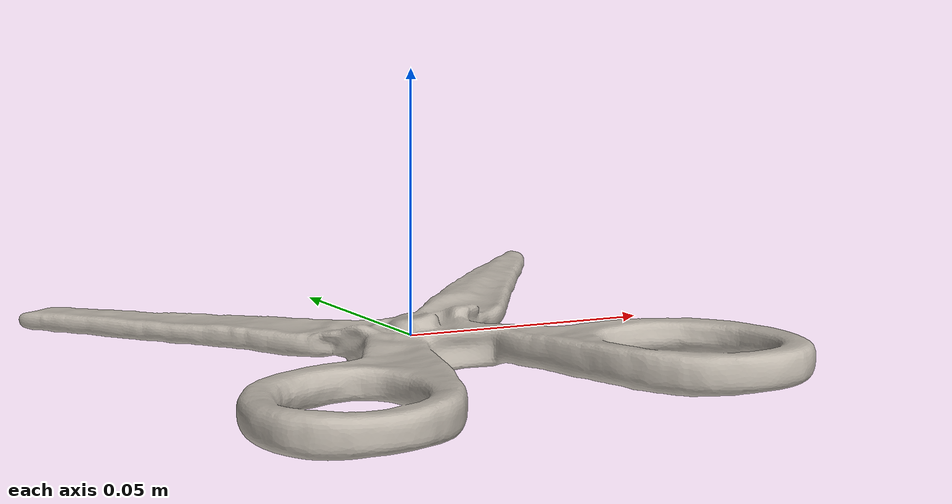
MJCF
<?xml version='1.0' encoding='utf-8'?>
<mujoco model="scissors_3">
  <asset>
    <texture file="ceramic.png" name="tex-scissors_3" type="2d" />
    <material name="scissors_3" reflectance="0.5" texrepeat="1 1" texture="tex-scissors_3" texuniform="false" />
    <mesh file="visual/model_normalized_0.obj" name="model_normalized_0_vis" scale="0.13000000000000003 0.13000000000000003 0.13000000000000003" refquat="0.4999999999999997 -0.4999999999999997 0.4999999999999997 -0.4999999999999997" />
    <mesh file="collision/model_normalized_collision_13.obj" name="model_normalized_collision_13._coll" scale="0.13000000000000003 0.13000000000000003 0.13000000000000003" refquat="0.4999999999999997 -0.4999999999999997 0.4999999999999997 -0.4999999999999997" />
    <mesh file="collision/model_normalized_collision_15.obj" name="model_normalized_collision_15._coll" scale="0.13000000000000003 0.13000000000000003 0.13000000000000003" refquat="0.4999999999999997 -0.4999999999999997 0.4999999999999997 -0.4999999999999997" />
    <mesh file="collision/model_normalized_collision_10.obj" name="model_normalized_collision_10._coll" scale="0.13000000000000003 0.13000000000000003 0.13000000000000003" refquat="0.4999999999999997 -0.4999999999999997 0.4999999999999997 -0.4999999999999997" />
    <mesh file="collision/model_normalized_collision_26.obj" name="model_normalized_collision_26._coll" scale="0.13000000000000003 0.13000000000000003 0.13000000000000003" refquat="0.4999999999999997 -0.4999999999999997 0.4999999999999997 -0.4999999999999997" />
    <mesh file="collision/model_normalized_collision_25.obj" name="model_normalized_collision_25._coll" scale="0.13000000000000003 0.13000000000000003 0.13000000000000003" refquat="0.4999999999999997 -0.4999999999999997 0.4999999999999997 -0.4999999999999997" />
    <mesh file="collision/model_normalized_collision_5.obj" name="model_normalized_collision_5._coll" scale="0.13000000000000003 0.13000000000000003 0.13000000000000003" refquat="0.4999999999999997 -0.4999999999999997 0.4999999999999997 -0.4999999999999997" />
    <mesh file="collision/model_normalized_collision_31.obj" name="model_normalized_collision_31._coll" scale="0.13000000000000003 0.13000000000000003 0.13000000000000003" refquat="0.4999999999999997 -0.4999999999999997 0.4999999999999997 -0.4999999999999997" />
    <mesh file="collision/model_normalized_collision_3.obj" name="model_normalized_collision_3._coll" scale="0.13000000000000003 0.13000000000000003 0.13000000000000003" refquat="0.4999999999999997 -0.4999999999999997 0.4999999999999997 -0.4999999999999997" />
    <mesh file="collision/model_normalized_collision_14.obj" name="model_normalized_collision_14._coll" scale="0.13000000000000003 0.13000000000000003 0.13000000000000003" refquat="0.4999999999999997 -0.4999999999999997 0.4999999999999997 -0.4999999999999997" />
    <mesh file="collision/model_normalized_collision_28.obj" name="model_normalized_collision_28._coll" scale="0.13000000000000003 0.13000000000000003 0.13000000000000003" refquat="0.4999999999999997 -0.4999999999999997 0.4999999999999997 -0.4999999999999997" />
    <mesh file="collision/model_normalized_collision_11.obj" name="model_normalized_collision_11._coll" scale="0.13000000000000003 0.13000000000000003 0.13000000000000003" refquat="0.4999999999999997 -0.4999999999999997 0.4999999999999997 -0.4999999999999997" />
    <mesh file="collision/model_normalized_collision_29.obj" name="model_normalized_collision_29._coll" scale="0.13000000000000003 0.13000000000000003 0.13000000000000003" refquat="0.4999999999999997 -0.4999999999999997 0.4999999999999997 -0.4999999999999997" />
    <mesh file="collision/model_normalized_collision_24.obj" name="model_normalized_collision_24._coll" scale="0.13000000000000003 0.13000000000000003 0.13000000000000003" refquat="0.4999999999999997 -0.4999999999999997 0.4999999999999997 -0.4999999999999997" />
    <mesh file="collision/model_normalized_collision_1.obj" name="model_normalized_collision_1._coll" scale="0.13000000000000003 0.13000000000000003 0.13000000000000003" refquat="0.4999999999999997 -0.4999999999999997 0.4999999999999997 -0.4999999999999997" />
    <mesh file="collision/model_normalized_collision_0.obj" name="model_normalized_collision_0._coll" scale="0.13000000000000003 0.13000000000000003 0.13000000000000003" refquat="0.4999999999999997 -0.4999999999999997 0.4999999999999997 -0.4999999999999997" />
    <mesh file="collision/model_normalized_collision_27.obj" name="model_normalized_collision_27._coll" scale="0.13000000000000003 0.13000000000000003 0.13000000000000003" refquat="0.4999999999999997 -0.4999999999999997 0.4999999999999997 -0.4999999999999997" />
    <mesh file="collision/model_normalized_collision_9.obj" name="model_normalized_collision_9._coll" scale="0.13000000000000003 0.13000000000000003 0.13000000000000003" refquat="0.4999999999999997 -0.4999999999999997 0.4999999999999997 -0.4999999999999997" />
    <mesh file="collision/model_normalized_collision_19.obj" name="model_normalized_collision_19._coll" scale="0.13000000000000003 0.13000000000000003 0.13000000000000003" refquat="0.4999999999999997 -0.4999999999999997 0.4999999999999997 -0.4999999999999997" />
    <mesh file="collision/model_normalized_collision_21.obj" name="model_normalized_collision_21._coll" scale="0.13000000000000003 0.13000000000000003 0.13000000000000003" refquat="0.4999999999999997 -0.4999999999999997 0.4999999999999997 -0.4999999999999997" />
    <mesh file="collision/model_normalized_collision_30.obj" name="model_normalized_collision_30._coll" scale="0.13000000000000003 0.13000000000000003 0.13000000000000003" refquat="0.4999999999999997 -0.4999999999999997 0.4999999999999997 -0.4999999999999997" />
    <mesh file="collision/model_normalized_collision_20.obj" name="model_normalized_collision_20._coll" scale="0.13000000000000003 0.13000000000000003 0.13000000000000003" refquat="0.4999999999999997 -0.4999999999999997 0.4999999999999997 -0.4999999999999997" />
    <mesh file="collision/model_normalized_collision_2.obj" name="model_normalized_collision_2._coll" scale="0.13000000000000003 0.13000000000000003 0.13000000000000003" refquat="0.4999999999999997 -0.4999999999999997 0.4999999999999997 -0.4999999999999997" />
    <mesh file="collision/model_normalized_collision_7.obj" name="model_normalized_collision_7._coll" scale="0.13000000000000003 0.13000000000000003 0.13000000000000003" refquat="0.4999999999999997 -0.4999999999999997 0.4999999999999997 -0.4999999999999997" />
    <mesh file="collision/model_normalized_collision_22.obj" name="model_normalized_collision_22._coll" scale="0.13000000000000003 0.13000000000000003 0.13000000000000003" refquat="0.4999999999999997 -0.4999999999999997 0.4999999999999997 -0.4999999999999997" />
    <mesh file="collision/model_normalized_collision_16.obj" name="model_normalized_collision_16._coll" scale="0.13000000000000003 0.13000000000000003 0.13000000000000003" refquat="0.4999999999999997 -0.4999999999999997 0.4999999999999997 -0.4999999999999997" />
    <mesh file="collision/model_normalized_collision_8.obj" name="model_normalized_collision_8._coll" scale="0.13000000000000003 0.13000000000000003 0.13000000000000003" refquat="0.4999999999999997 -0.4999999999999997 0.4999999999999997 -0.4999999999999997" />
    <mesh file="collision/model_normalized_collision_6.obj" name="model_normalized_collision_6._coll" scale="0.13000000000000003 0.13000000000000003 0.13000000000000003" refquat="0.4999999999999997 -0.4999999999999997 0.4999999999999997 -0.4999999999999997" />
    <mesh file="collision/model_normalized_collision_18.obj" name="model_normalized_collision_18._coll" scale="0.13000000000000003 0.13000000000000003 0.13000000000000003" refquat="0.4999999999999997 -0.4999999999999997 0.4999999999999997 -0.4999999999999997" />
    <mesh file="collision/model_normalized_collision_17.obj" name="model_normalized_collision_17._coll" scale="0.13000000000000003 0.13000000000000003 0.13000000000000003" refquat="0.4999999999999997 -0.4999999999999997 0.4999999999999997 -0.4999999999999997" />
    <mesh file="collision/model_normalized_collision_12.obj" name="model_normalized_collision_12._coll" scale="0.13000000000000003 0.13000000000000003 0.13000000000000003" refquat="0.4999999999999997 -0.4999999999999997 0.4999999999999997 -0.4999999999999997" />
    <mesh file="collision/model_normalized_collision_4.obj" name="model_normalized_collision_4._coll" scale="0.13000000000000003 0.13000000000000003 0.13000000000000003" refquat="0.4999999999999997 -0.4999999999999997 0.4999999999999997 -0.4999999999999997" />
    <mesh file="collision/model_normalized_collision_23.obj" name="model_normalized_collision_23._coll" scale="0.13000000000000003 0.13000000000000003 0.13000000000000003" refquat="0.4999999999999997 -0.4999999999999997 0.4999999999999997 -0.4999999999999997" />
    <texture type="2d" name="9348d42b0a06_scissors__3d_asset__texture_kd" file="visual/9348d42b0a06_scissors__3d_asset__texture_kd.png" />
    <material name="Material_0" texture="9348d42b0a06_scissors__3d_asset__texture_kd" specular="0.5" shininess="0.5" />
  </asset>
  <default>
    <default class="region">
      <geom group="1" conaffinity="0" contype="0" rgba="0 1 0 0" />
    </default>
  </default>
  <worldbody>
    <body>
      <body name="object">
        <geom solimp="0.998 0.998 0.001" solref="0.001 1" density="100" friction="0.95 0.3 0.1" type="mesh" mesh="model_normalized_0_vis" conaffinity="0" contype="0" group="1" material="Material_0" />
        <geom solimp="0.998 0.998 0.001" solref="0.001 1" density="100" friction="0.95 0.3 0.1" type="mesh" mesh="model_normalized_collision_13._coll" group="0" rgba="0.8 0.8 0.8 0.0" />
        <geom solimp="0.998 0.998 0.001" solref="0.001 1" density="100" friction="0.95 0.3 0.1" type="mesh" mesh="model_normalized_collision_15._coll" group="0" rgba="0.8 0.8 0.8 0.0" />
        <geom solimp="0.998 0.998 0.001" solref="0.001 1" density="100" friction="0.95 0.3 0.1" type="mesh" mesh="model_normalized_collision_10._coll" group="0" rgba="0.8 0.8 0.8 0.0" />
        <geom solimp="0.998 0.998 0.001" solref="0.001 1" density="100" friction="0.95 0.3 0.1" type="mesh" mesh="model_normalized_collision_26._coll" group="0" rgba="0.8 0.8 0.8 0.0" />
        <geom solimp="0.998 0.998 0.001" solref="0.001 1" density="100" friction="0.95 0.3 0.1" type="mesh" mesh="model_normalized_collision_25._coll" group="0" rgba="0.8 0.8 0.8 0.0" />
        <geom solimp="0.998 0.998 0.001" solref="0.001 1" density="100" friction="0.95 0.3 0.1" type="mesh" mesh="model_normalized_collision_5._coll" group="0" rgba="0.8 0.8 0.8 0.0" />
        <geom solimp="0.998 0.998 0.001" solref="0.001 1" density="100" friction="0.95 0.3 0.1" type="mesh" mesh="model_normalized_collision_31._coll" group="0" rgba="0.8 0.8 0.8 0.0" />
        <geom solimp="0.998 0.998 0.001" solref="0.001 1" density="100" friction="0.95 0.3 0.1" type="mesh" mesh="model_normalized_collision_3._coll" group="0" rgba="0.8 0.8 0.8 0.0" />
        <geom solimp="0.998 0.998 0.001" solref="0.001 1" density="100" friction="0.95 0.3 0.1" type="mesh" mesh="model_normalized_collision_14._coll" group="0" rgba="0.8 0.8 0.8 0.0" />
        <geom solimp="0.998 0.998 0.001" solref="0.001 1" density="100" friction="0.95 0.3 0.1" type="mesh" mesh="model_normalized_collision_28._coll" group="0" rgba="0.8 0.8 0.8 0.0" />
        <geom solimp="0.998 0.998 0.001" solref="0.001 1" density="100" friction="0.95 0.3 0.1" type="mesh" mesh="model_normalized_collision_11._coll" group="0" rgba="0.8 0.8 0.8 0.0" />
        <geom solimp="0.998 0.998 0.001" solref="0.001 1" density="100" friction="0.95 0.3 0.1" type="mesh" mesh="model_normalized_collision_29._coll" group="0" rgba="0.8 0.8 0.8 0.0" />
        <geom solimp="0.998 0.998 0.001" solref="0.001 1" density="100" friction="0.95 0.3 0.1" type="mesh" mesh="model_normalized_collision_24._coll" group="0" rgba="0.8 0.8 0.8 0.0" />
        <geom solimp="0.998 0.998 0.001" solref="0.001 1" density="100" friction="0.95 0.3 0.1" type="mesh" mesh="model_normalized_collision_1._coll" group="0" rgba="0.8 0.8 0.8 0.0" />
        <geom solimp="0.998 0.998 0.001" solref="0.001 1" density="100" friction="0.95 0.3 0.1" type="mesh" mesh="model_normalized_collision_0._coll" group="0" rgba="0.8 0.8 0.8 0.0" />
        <geom solimp="0.998 0.998 0.001" solref="0.001 1" density="100" friction="0.95 0.3 0.1" type="mesh" mesh="model_normalized_collision_27._coll" group="0" rgba="0.8 0.8 0.8 0.0" />
        <geom solimp="0.998 0.998 0.001" solref="0.001 1" density="100" friction="0.95 0.3 0.1" type="mesh" mesh="model_normalized_collision_9._coll" group="0" rgba="0.8 0.8 0.8 0.0" />
        <geom solimp="0.998 0.998 0.001" solref="0.001 1" density="100" friction="0.95 0.3 0.1" type="mesh" mesh="model_normalized_collision_19._coll" group="0" rgba="0.8 0.8 0.8 0.0" />
        <geom solimp="0.998 0.998 0.001" solref="0.001 1" density="100" friction="0.95 0.3 0.1" type="mesh" mesh="model_normalized_collision_21._coll" group="0" rgba="0.8 0.8 0.8 0.0" />
        <geom solimp="0.998 0.998 0.001" solref="0.001 1" density="100" friction="0.95 0.3 0.1" type="mesh" mesh="model_normalized_collision_30._coll" group="0" rgba="0.8 0.8 0.8 0.0" />
        <geom solimp="0.998 0.998 0.001" solref="0.001 1" density="100" friction="0.95 0.3 0.1" type="mesh" mesh="model_normalized_collision_20._coll" group="0" rgba="0.8 0.8 0.8 0.0" />
        <geom solimp="0.998 0.998 0.001" solref="0.001 1" density="100" friction="0.95 0.3 0.1" type="mesh" mesh="model_normalized_collision_2._coll" group="0" rgba="0.8 0.8 0.8 0.0" />
        <geom solimp="0.998 0.998 0.001" solref="0.001 1" density="100" friction="0.95 0.3 0.1" type="mesh" mesh="model_normalized_collision_7._coll" group="0" rgba="0.8 0.8 0.8 0.0" />
        <geom solimp="0.998 0.998 0.001" solref="0.001 1" density="100" friction="0.95 0.3 0.1" type="mesh" mesh="model_normalized_collision_22._coll" group="0" rgba="0.8 0.8 0.8 0.0" />
        <geom solimp="0.998 0.998 0.001" solref="0.001 1" density="100" friction="0.95 0.3 0.1" type="mesh" mesh="model_normalized_collision_16._coll" group="0" rgba="0.8 0.8 0.8 0.0" />
        <geom solimp="0.998 0.998 0.001" solref="0.001 1" density="100" friction="0.95 0.3 0.1" type="mesh" mesh="model_normalized_collision_8._coll" group="0" rgba="0.8 0.8 0.8 0.0" />
        <geom solimp="0.998 0.998 0.001" solref="0.001 1" density="100" friction="0.95 0.3 0.1" type="mesh" mesh="model_normalized_collision_6._coll" group="0" rgba="0.8 0.8 0.8 0.0" />
        <geom solimp="0.998 0.998 0.001" solref="0.001 1" density="100" friction="0.95 0.3 0.1" type="mesh" mesh="model_normalized_collision_18._coll" group="0" rgba="0.8 0.8 0.8 0.0" />
        <geom solimp="0.998 0.998 0.001" solref="0.001 1" density="100" friction="0.95 0.3 0.1" type="mesh" mesh="model_normalized_collision_17._coll" group="0" rgba="0.8 0.8 0.8 0.0" />
        <geom solimp="0.998 0.998 0.001" solref="0.001 1" density="100" friction="0.95 0.3 0.1" type="mesh" mesh="model_normalized_collision_12._coll" group="0" rgba="0.8 0.8 0.8 0.0" />
        <geom solimp="0.998 0.998 0.001" solref="0.001 1" density="100" friction="0.95 0.3 0.1" type="mesh" mesh="model_normalized_collision_4._coll" group="0" rgba="0.8 0.8 0.8 0.0" />
        <geom solimp="0.998 0.998 0.001" solref="0.001 1" density="100" friction="0.95 0.3 0.1" type="mesh" mesh="model_normalized_collision_23._coll" group="0" rgba="0.8 0.8 0.8 0.0" />
        <geom class="region" name="reg_bbox" type="box" pos="0.00032483619632956215 -1.3823461919582062e-09 0.0002632576540567526" size="0.0613854402503415 0.06598484848713061 0.006893941000135561" />
      </body>
    <site rgba="0 0 0 0" size="0.005" pos="0 0 -0.0066306833" name="bottom_site" /><site rgba="0 0 0 0" size="0.005" pos="0 0 0.0071571987" name="top_site" /><site rgba="0 0 0 0" size="0.005" pos="0.06598485 0.06598485 0" name="horizontal_radius_site" /></body>
  </worldbody>
</mujoco>
